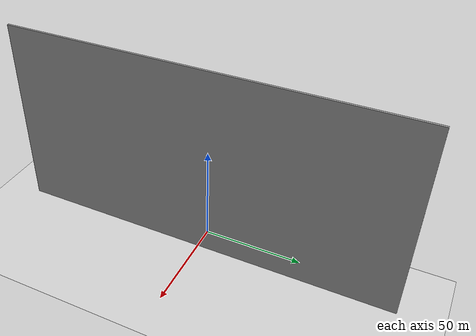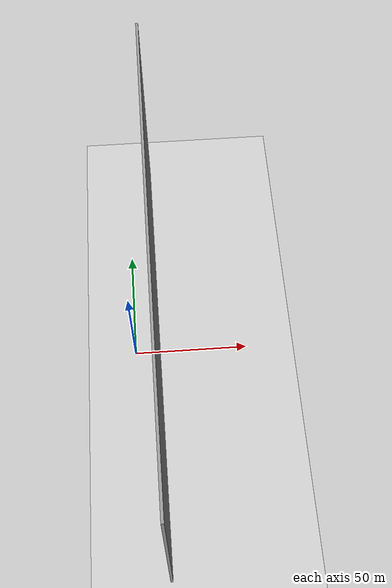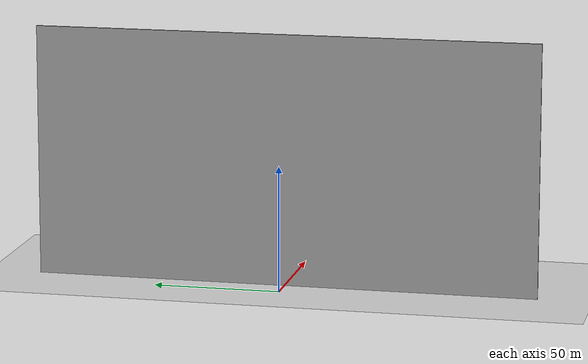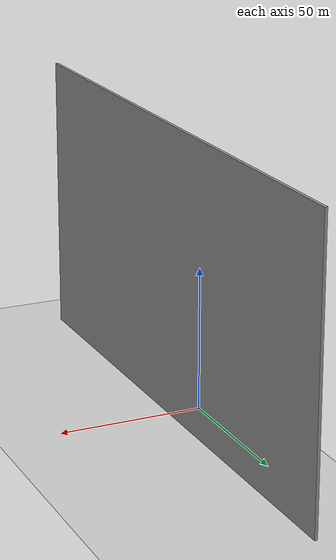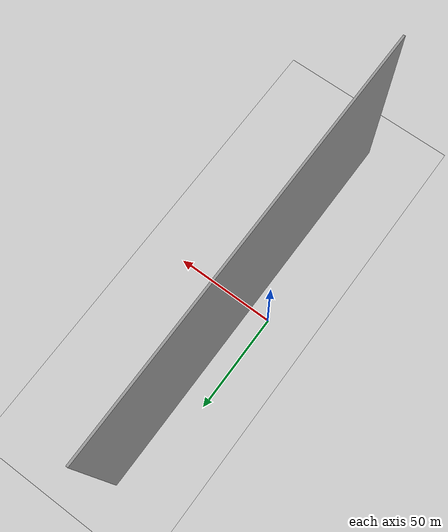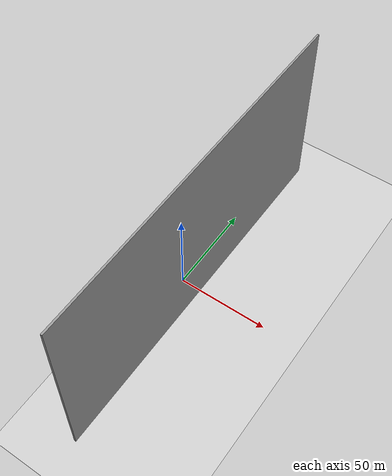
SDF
<?xml version="1.0" ?>
<sdf version="1.5">
  <world name="default">
    <!-- A global light source -->
    <include>
      <uri>model://sun</uri>
    </include>
    <!-- A ground plane -->
    <include>
      <uri>model://ground_plane</uri>
    </include>
    <!-- Wall: 1 m thick (x), 200 m long (y), 100 m tall (z); near face at x = 10 m -->
    <model name='wall_box'>
      <pose frame=''>10.5 0 50 0 0 0</pose>
      <link name='link'>
        <inertial>
          <mass>1</mass>
          <inertia>
            <ixx>833333.333</ixx>
            <ixy>0</ixy>
            <ixz>0</ixz>
            <iyy>833.333</iyy>
            <iyz>0</iyz>
            <izz>3333.333</izz>
          </inertia>
        </inertial>
        <collision name='collision'>
          <geometry>
            <box>
              <size>1 200 100</size>
            </box>
          </geometry>
          <max_contacts>10</max_contacts>
          <surface>
            <contact>
              <ode/>
            </contact>
            <bounce/>
            <friction>
              <torsional>
                <ode/>
              </torsional>
              <ode/>
            </friction>
          </surface>
        </collision>
        <visual name='visual'>
          <geometry>
            <box>
              <size>1 200 100</size>
            </box>
          </geometry>
          <material>
            <script>
              <name>Gazebo/Grey</name>
              <uri>file://media/materials/scripts/gazebo.material</uri>
            </script>
          </material>
        </visual>
        <self_collide>0</self_collide>
        <kinematic>0</kinematic>
        <gravity>1</gravity>
      </link>
    </model>
  </world>
</sdf>
